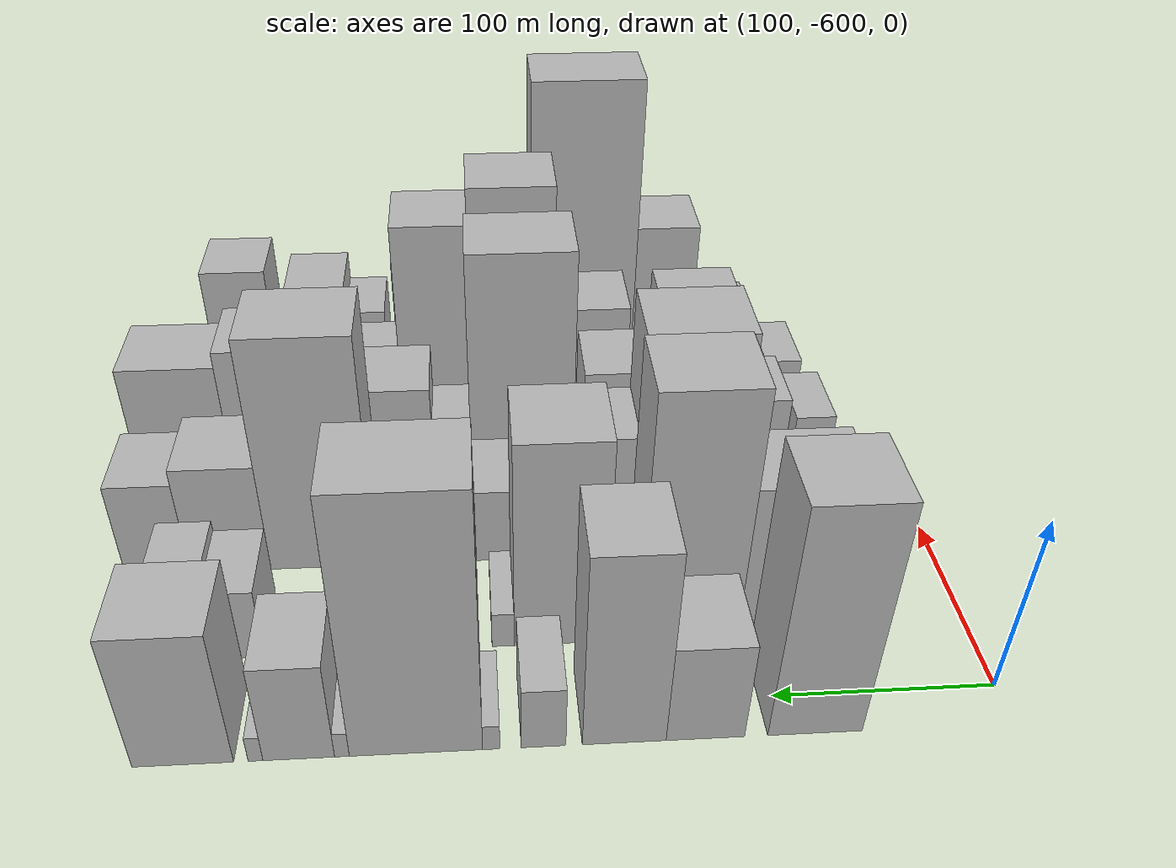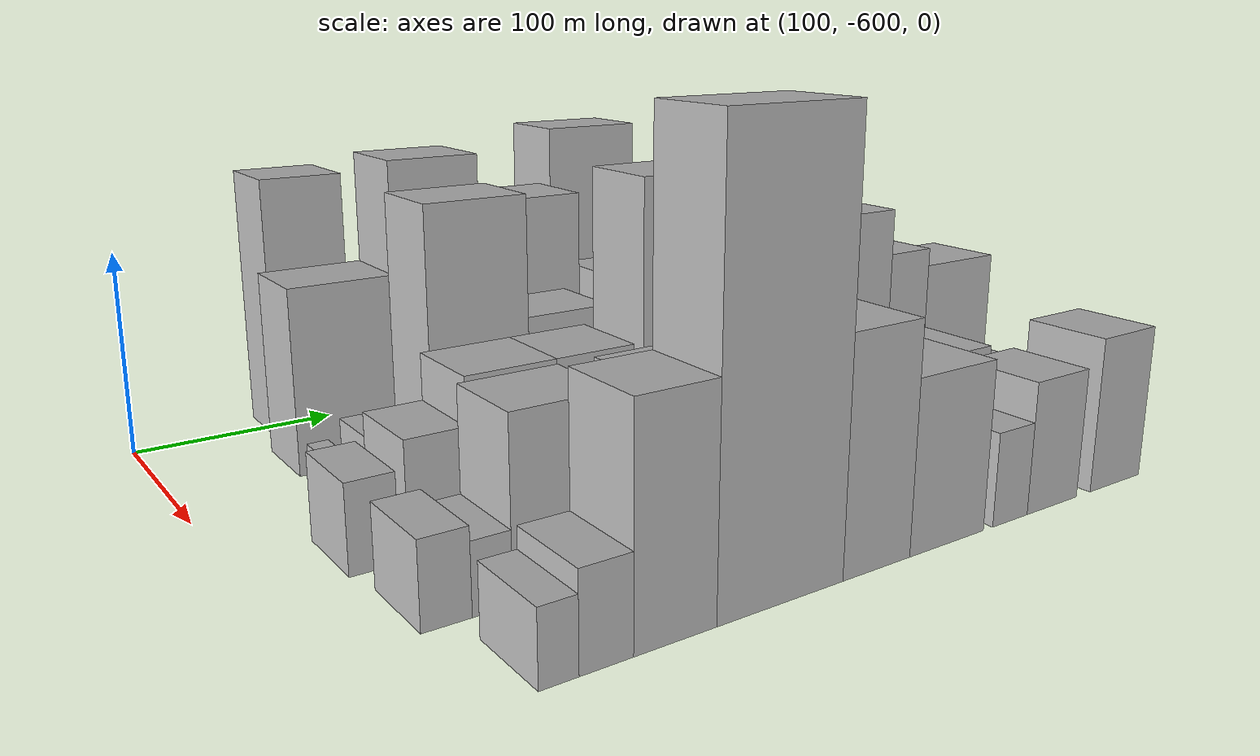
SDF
<sdf version="1.6">
 <world name="default">
  <model name="building_14">
   <static>1</static>
   <pose>100.0000 -514.0677 0 0.000000 0.000000 0.000000</pose>
   <link name="link">
    <pose>0 0 66.00 0 0 0</pose>
    <collision name="collision"><geometry><box><size>40.0000 40.9364 132.0000</size></box></geometry></collision>
    <visual name="visual">
     <cast_shadows>0</cast_shadows>
     <geometry><box><size>40.0000 40.9364 132.0000</size></box></geometry>
     <material>
      <script>
       <uri>model://HANNAS_wall/materials/scripts</uri>
       <uri>model://HANNAS_wall/materials/textures</uri>
       <name>vrc/HANNAS_wall</name>
      </script>
     </material>
    </visual>
   </link>
  </model>
  <model name="building_15">
   <static>1</static>
   <pose>100.0000 -466.7707 0 0.000000 0.000000 0.000000</pose>
   <link name="link">
    <pose>0 0 28.50 0 0 0</pose>
    <collision name="collision"><geometry><box><size>40.0000 33.6576 57.0000</size></box></geometry></collision>
    <visual name="visual">
     <cast_shadows>0</cast_shadows>
     <geometry><box><size>40.0000 33.6576 57.0000</size></box></geometry>
     <material>
      <script>
       <uri>model://HANNAS_wall/materials/scripts</uri>
       <uri>model://HANNAS_wall/materials/textures</uri>
       <name>vrc/HANNAS_wall</name>
      </script>
     </material>
    </visual>
   </link>
  </model>
  <model name="building_16">
   <static>1</static>
   <pose>100.0000 -432.0576 0 0.000000 0.000000 0.000000</pose>
   <link name="link">
    <pose>0 0 55.50 0 0 0</pose>
    <collision name="collision"><geometry><box><size>40.0000 35.7686 111.0000</size></box></geometry></collision>
    <visual name="visual">
     <cast_shadows>0</cast_shadows>
     <geometry><box><size>40.0000 35.7686 111.0000</size></box></geometry>
     <material>
      <script>
       <uri>model://HANNAS_wall/materials/scripts</uri>
       <uri>model://HANNAS_wall/materials/textures</uri>
       <name>vrc/HANNAS_wall</name>
      </script>
     </material>
    </visual>
   </link>
  </model>
  <model name="building_17">
   <static>1</static>
   <pose>100.0000 -397.7357 0 0.000000 0.000000 0.000000</pose>
   <link name="link">
    <pose>0 0 18.00 0 0 0</pose>
    <collision name="collision"><geometry><box><size>40.0000 18.8753 36.0000</size></box></geometry></collision>
    <visual name="visual">
     <cast_shadows>0</cast_shadows>
     <geometry><box><size>40.0000 18.8753 36.0000</size></box></geometry>
     <material>
      <script>
       <uri>model://HANNAS_wall/materials/scripts</uri>
       <uri>model://HANNAS_wall/materials/textures</uri>
       <name>vrc/HANNAS_wall</name>
      </script>
     </material>
    </visual>
   </link>
  </model>
  <model name="building_18">
   <static>1</static>
   <pose>100.0000 -375.6506 0 0.000000 0.000000 0.000000</pose>
   <link name="link">
    <pose>0 0 7.50 0 0 0</pose>
    <collision name="collision"><geometry><box><size>40.0000 7.2949 15.0000</size></box></geometry></collision>
    <visual name="visual">
     <cast_shadows>0</cast_shadows>
     <geometry><box><size>40.0000 7.2949 15.0000</size></box></geometry>
     <material>
      <script>
       <uri>model://HANNAS_wall/materials/scripts</uri>
       <uri>model://HANNAS_wall/materials/textures</uri>
       <name>vrc/HANNAS_wall</name>
      </script>
     </material>
    </visual>
   </link>
  </model>
  <model name="building_19">
   <static>1</static>
   <pose>100.0000 -344.0484 0 0.000000 0.000000 0.000000</pose>
   <link name="link">
    <pose>0 0 73.50 0 0 0</pose>
    <collision name="collision"><geometry><box><size>40.0000 55.9094 147.0000</size></box></geometry></collision>
    <visual name="visual">
     <cast_shadows>0</cast_shadows>
     <geometry><box><size>40.0000 55.9094 147.0000</size></box></geometry>
     <material>
      <script>
       <uri>model://HANNAS_wall/materials/scripts</uri>
       <uri>model://HANNAS_wall/materials/textures</uri>
       <name>vrc/HANNAS_wall</name>
      </script>
     </material>
    </visual>
   </link>
  </model>
  <model name="building_20">
   <static>1</static>
   <pose>100.0000 -313.0314 0 0.000000 0.000000 0.000000</pose>
   <link name="link">
    <pose>0 0 7.50 0 0 0</pose>
    <collision name="collision"><geometry><box><size>40.0000 6.1247 15.0000</size></box></geometry></collision>
    <visual name="visual">
     <cast_shadows>0</cast_shadows>
     <geometry><box><size>40.0000 6.1247 15.0000</size></box></geometry>
     <material>
      <script>
       <uri>model://HANNAS_wall/materials/scripts</uri>
       <uri>model://HANNAS_wall/materials/textures</uri>
       <name>vrc/HANNAS_wall</name>
      </script>
     </material>
    </visual>
   </link>
  </model>
  <model name="building_21">
   <static>1</static>
   <pose>100.0000 -295.0973 0 0.000000 0.000000 0.000000</pose>
   <link name="link">
    <pose>0 0 28.50 0 0 0</pose>
    <collision name="collision"><geometry><box><size>40.0000 29.7436 57.0000</size></box></geometry></collision>
    <visual name="visual">
     <cast_shadows>0</cast_shadows>
     <geometry><box><size>40.0000 29.7436 57.0000</size></box></geometry>
     <material>
      <script>
       <uri>model://HANNAS_wall/materials/scripts</uri>
       <uri>model://HANNAS_wall/materials/textures</uri>
       <name>vrc/HANNAS_wall</name>
      </script>
     </material>
    </visual>
   </link>
  </model>
  <model name="building_22">
   <static>1</static>
   <pose>100.0000 -277.1686 0 0.000000 0.000000 0.000000</pose>
   <link name="link">
    <pose>0 0 7.50 0 0 0</pose>
    <collision name="collision"><geometry><box><size>40.0000 6.1137 15.0000</size></box></geometry></collision>
    <visual name="visual">
     <cast_shadows>0</cast_shadows>
     <geometry><box><size>40.0000 6.1137 15.0000</size></box></geometry>
     <material>
      <script>
       <uri>model://HANNAS_wall/materials/scripts</uri>
       <uri>model://HANNAS_wall/materials/textures</uri>
       <name>vrc/HANNAS_wall</name>
      </script>
     </material>
    </visual>
   </link>
  </model>
  <model name="building_23">
   <static>1</static>
   <pose>100.0000 -247.1722 0 0.000000 0.000000 0.000000</pose>
   <link name="link">
    <pose>0 0 39.00 0 0 0</pose>
    <collision name="collision"><geometry><box><size>40.0000 41.8790 78.0000</size></box></geometry></collision>
    <visual name="visual">
     <cast_shadows>0</cast_shadows>
     <geometry><box><size>40.0000 41.8790 78.0000</size></box></geometry>
     <material>
      <script>
       <uri>model://HANNAS_wall/materials/scripts</uri>
       <uri>model://HANNAS_wall/materials/textures</uri>
       <name>vrc/HANNAS_wall</name>
      </script>
     </material>
    </visual>
   </link>
  </model>
  <model name="building_66">
   <static>1</static>
   <pose>155.0000 -517.5448 0 0.000000 0.000000 0.000000</pose>
   <link name="link">
    <pose>0 0 45.00 0 0 0</pose>
    <collision name="collision"><geometry><box><size>40.0000 51.1776 90.0000</size></box></geometry></collision>
    <visual name="visual">
     <cast_shadows>0</cast_shadows>
     <geometry><box><size>40.0000 51.1776 90.0000</size></box></geometry>
     <material>
      <script>
       <uri>model://HANNAS_wall/materials/scripts</uri>
       <uri>model://HANNAS_wall/materials/textures</uri>
       <name>vrc/HANNAS_wall</name>
      </script>
     </material>
    </visual>
   </link>
  </model>
  <model name="building_67">
   <static>1</static>
   <pose>155.0000 -468.7932 0 0.000000 0.000000 0.000000</pose>
   <link name="link">
    <pose>0 0 72.00 0 0 0</pose>
    <collision name="collision"><geometry><box><size>40.0000 46.3255 144.0000</size></box></geometry></collision>
    <visual name="visual">
     <cast_shadows>0</cast_shadows>
     <geometry><box><size>40.0000 46.3255 144.0000</size></box></geometry>
     <material>
      <script>
       <uri>model://HANNAS_wall/materials/scripts</uri>
       <uri>model://HANNAS_wall/materials/textures</uri>
       <name>vrc/HANNAS_wall</name>
      </script>
     </material>
    </visual>
   </link>
  </model>
  <model name="building_68">
   <static>1</static>
   <pose>155.0000 -441.0066 0 0.000000 0.000000 0.000000</pose>
   <link name="link">
    <pose>0 0 10.50 0 0 0</pose>
    <collision name="collision"><geometry><box><size>40.0000 9.2479 21.0000</size></box></geometry></collision>
    <visual name="visual">
     <cast_shadows>0</cast_shadows>
     <geometry><box><size>40.0000 9.2479 21.0000</size></box></geometry>
     <material>
      <script>
       <uri>model://HANNAS_wall/materials/scripts</uri>
       <uri>model://HANNAS_wall/materials/textures</uri>
       <name>vrc/HANNAS_wall</name>
      </script>
     </material>
    </visual>
   </link>
  </model>
  <model name="building_69">
   <static>1</static>
   <pose>155.0000 -409.1685 0 0.000000 0.000000 0.000000</pose>
   <link name="link">
    <pose>0 0 60.00 0 0 0</pose>
    <collision name="collision"><geometry><box><size>40.0000 42.4283 120.0000</size></box></geometry></collision>
    <visual name="visual">
     <cast_shadows>0</cast_shadows>
     <geometry><box><size>40.0000 42.4283 120.0000</size></box></geometry>
     <material>
      <script>
       <uri>model://HANNAS_wall/materials/scripts</uri>
       <uri>model://HANNAS_wall/materials/textures</uri>
       <name>vrc/HANNAS_wall</name>
      </script>
     </material>
    </visual>
   </link>
  </model>
  <model name="building_70">
   <static>1</static>
   <pose>155.0000 -382.8238 0 0.000000 0.000000 0.000000</pose>
   <link name="link">
    <pose>0 0 10.50 0 0 0</pose>
    <collision name="collision"><geometry><box><size>40.0000 10.2613 21.0000</size></box></geometry></collision>
    <visual name="visual">
     <cast_shadows>0</cast_shadows>
     <geometry><box><size>40.0000 10.2613 21.0000</size></box></geometry>
     <material>
      <script>
       <uri>model://HANNAS_wall/materials/scripts</uri>
       <uri>model://HANNAS_wall/materials/textures</uri>
       <name>vrc/HANNAS_wall</name>
      </script>
     </material>
    </visual>
   </link>
  </model>
  <model name="building_71">
   <static>1</static>
   <pose>155.0000 -350.4230 0 0.000000 0.000000 0.000000</pose>
   <link name="link">
    <pose>0 0 37.50 0 0 0</pose>
    <collision name="collision"><geometry><box><size>40.0000 42.5403 75.0000</size></box></geometry></collision>
    <visual name="visual">
     <cast_shadows>0</cast_shadows>
     <geometry><box><size>40.0000 42.5403 75.0000</size></box></geometry>
     <material>
      <script>
       <uri>model://HANNAS_wall/materials/scripts</uri>
       <uri>model://HANNAS_wall/materials/textures</uri>
       <name>vrc/HANNAS_wall</name>
      </script>
     </material>
    </visual>
   </link>
  </model>
  <model name="building_72">
   <static>1</static>
   <pose>155.0000 -262.2023 0 0.000000 0.000000 0.000000</pose>
   <link name="link">
    <pose>0 0 21.00 0 0 0</pose>
    <collision name="collision"><geometry><box><size>40.0000 23.3004 42.0000</size></box></geometry></collision>
    <visual name="visual">
     <cast_shadows>0</cast_shadows>
     <geometry><box><size>40.0000 23.3004 42.0000</size></box></geometry>
     <material>
      <script>
       <uri>model://HANNAS_wall/materials/scripts</uri>
       <uri>model://HANNAS_wall/materials/textures</uri>
       <name>vrc/HANNAS_wall</name>
      </script>
     </material>
    </visual>
   </link>
  </model>
  <model name="building_73">
   <static>1</static>
   <pose>155.0000 -237.8445 0 0.000000 0.000000 0.000000</pose>
   <link name="link">
    <pose>0 0 24.00 0 0 0</pose>
    <collision name="collision"><geometry><box><size>40.0000 25.4152 48.0000</size></box></geometry></collision>
    <visual name="visual">
     <cast_shadows>0</cast_shadows>
     <geometry><box><size>40.0000 25.4152 48.0000</size></box></geometry>
     <material>
      <script>
       <uri>model://HANNAS_wall/materials/scripts</uri>
       <uri>model://HANNAS_wall/materials/textures</uri>
       <name>vrc/HANNAS_wall</name>
      </script>
     </material>
    </visual>
   </link>
  </model>
  <model name="building_115">
   <static>1</static>
   <pose>210.0000 -538.9738 0 0.000000 0.000000 0.000000</pose>
   <link name="link">
    <pose>0 0 10.50 0 0 0</pose>
    <collision name="collision"><geometry><box><size>40.0000 10.1517 21.0000</size></box></geometry></collision>
    <visual name="visual">
     <cast_shadows>0</cast_shadows>
     <geometry><box><size>40.0000 10.1517 21.0000</size></box></geometry>
     <material>
      <script>
       <uri>model://HANNAS_wall/materials/scripts</uri>
       <uri>model://HANNAS_wall/materials/textures</uri>
       <name>vrc/HANNAS_wall</name>
      </script>
     </material>
    </visual>
   </link>
  </model>
  <model name="building_116">
   <static>1</static>
   <pose>210.0000 -518.9305 0 0.000000 0.000000 0.000000</pose>
   <link name="link">
    <pose>0 0 15.00 0 0 0</pose>
    <collision name="collision"><geometry><box><size>40.0000 17.9350 30.0000</size></box></geometry></collision>
    <visual name="visual">
     <cast_shadows>0</cast_shadows>
     <geometry><box><size>40.0000 17.9350 30.0000</size></box></geometry>
     <material>
      <script>
       <uri>model://HANNAS_wall/materials/scripts</uri>
       <uri>model://HANNAS_wall/materials/textures</uri>
       <name>vrc/HANNAS_wall</name>
      </script>
     </material>
    </visual>
   </link>
  </model>
  <model name="building_117">
   <static>1</static>
   <pose>210.0000 -505.1969 0 0.000000 0.000000 0.000000</pose>
   <link name="link">
    <pose>0 0 10.50 0 0 0</pose>
    <collision name="collision"><geometry><box><size>40.0000 9.5322 21.0000</size></box></geometry></collision>
    <visual name="visual">
     <cast_shadows>0</cast_shadows>
     <geometry><box><size>40.0000 9.5322 21.0000</size></box></geometry>
     <material>
      <script>
       <uri>model://HANNAS_wall/materials/scripts</uri>
       <uri>model://HANNAS_wall/materials/textures</uri>
       <name>vrc/HANNAS_wall</name>
      </script>
     </material>
    </visual>
   </link>
  </model>
  <model name="building_118">
   <static>1</static>
   <pose>210.0000 -475.3468 0 0.000000 0.000000 0.000000</pose>
   <link name="link">
    <pose>0 0 66.00 0 0 0</pose>
    <collision name="collision"><geometry><box><size>40.0000 50.1679 132.0000</size></box></geometry></collision>
    <visual name="visual">
     <cast_shadows>0</cast_shadows>
     <geometry><box><size>40.0000 50.1679 132.0000</size></box></geometry>
     <material>
      <script>
       <uri>model://HANNAS_wall/materials/scripts</uri>
       <uri>model://HANNAS_wall/materials/textures</uri>
       <name>vrc/HANNAS_wall</name>
      </script>
     </material>
    </visual>
   </link>
  </model>
  <model name="building_119">
   <static>1</static>
   <pose>210.0000 -428.3292 0 0.000000 0.000000 0.000000</pose>
   <link name="link">
    <pose>0 0 37.50 0 0 0</pose>
    <collision name="collision"><geometry><box><size>40.0000 43.8673 75.0000</size></box></geometry></collision>
    <visual name="visual">
     <cast_shadows>0</cast_shadows>
     <geometry><box><size>40.0000 43.8673 75.0000</size></box></geometry>
     <material>
      <script>
       <uri>model://HANNAS_wall/materials/scripts</uri>
       <uri>model://HANNAS_wall/materials/textures</uri>
       <name>vrc/HANNAS_wall</name>
      </script>
     </material>
    </visual>
   </link>
  </model>
  <model name="building_120">
   <static>1</static>
   <pose>210.0000 -398.6652 0 0.000000 0.000000 0.000000</pose>
   <link name="link">
    <pose>0 0 15.00 0 0 0</pose>
    <collision name="collision"><geometry><box><size>40.0000 15.4608 30.0000</size></box></geometry></collision>
    <visual name="visual">
     <cast_shadows>0</cast_shadows>
     <geometry><box><size>40.0000 15.4608 30.0000</size></box></geometry>
     <material>
      <script>
       <uri>model://HANNAS_wall/materials/scripts</uri>
       <uri>model://HANNAS_wall/materials/textures</uri>
       <name>vrc/HANNAS_wall</name>
      </script>
     </material>
    </visual>
   </link>
  </model>
  <model name="building_121">
   <static>1</static>
   <pose>210.0000 -379.0205 0 0.000000 0.000000 0.000000</pose>
   <link name="link">
    <pose>0 0 22.50 0 0 0</pose>
    <collision name="collision"><geometry><box><size>40.0000 23.8286 45.0000</size></box></geometry></collision>
    <visual name="visual">
     <cast_shadows>0</cast_shadows>
     <geometry><box><size>40.0000 23.8286 45.0000</size></box></geometry>
     <material>
      <script>
       <uri>model://HANNAS_wall/materials/scripts</uri>
       <uri>model://HANNAS_wall/materials/textures</uri>
       <name>vrc/HANNAS_wall</name>
      </script>
     </material>
    </visual>
   </link>
  </model>
  <model name="building_122">
   <static>1</static>
   <pose>210.0000 -353.2999 0 0.000000 0.000000 0.000000</pose>
   <link name="link">
    <pose>0 0 19.50 0 0 0</pose>
    <collision name="collision"><geometry><box><size>40.0000 19.6126 39.0000</size></box></geometry></collision>
    <visual name="visual">
     <cast_shadows>0</cast_shadows>
     <geometry><box><size>40.0000 19.6126 39.0000</size></box></geometry>
     <material>
      <script>
       <uri>model://HANNAS_wall/materials/scripts</uri>
       <uri>model://HANNAS_wall/materials/textures</uri>
       <name>vrc/HANNAS_wall</name>
      </script>
     </material>
    </visual>
   </link>
  </model>
  <model name="building_123">
   <static>1</static>
   <pose>210.0000 -334.2022 0 0.000000 0.000000 0.000000</pose>
   <link name="link">
    <pose>0 0 18.00 0 0 0</pose>
    <collision name="collision"><geometry><box><size>40.0000 18.5828 36.0000</size></box></geometry></collision>
    <visual name="visual">
     <cast_shadows>0</cast_shadows>
     <geometry><box><size>40.0000 18.5828 36.0000</size></box></geometry>
     <material>
      <script>
       <uri>model://HANNAS_wall/materials/scripts</uri>
       <uri>model://HANNAS_wall/materials/textures</uri>
       <name>vrc/HANNAS_wall</name>
      </script>
     </material>
    </visual>
   </link>
  </model>
  <model name="building_124">
   <static>1</static>
   <pose>210.0000 -295.9468 0 0.000000 0.000000 0.000000</pose>
   <link name="link">
    <pose>0 0 69.00 0 0 0</pose>
    <collision name="collision"><geometry><box><size>40.0000 51.9281 138.0000</size></box></geometry></collision>
    <visual name="visual">
     <cast_shadows>0</cast_shadows>
     <geometry><box><size>40.0000 51.9281 138.0000</size></box></geometry>
     <material>
      <script>
       <uri>model://HANNAS_wall/materials/scripts</uri>
       <uri>model://HANNAS_wall/materials/textures</uri>
       <name>vrc/HANNAS_wall</name>
      </script>
     </material>
    </visual>
   </link>
  </model>
  <model name="building_125">
   <static>1</static>
   <pose>210.0000 -250.2728 0 0.000000 0.000000 0.000000</pose>
   <link name="link">
    <pose>0 0 33.00 0 0 0</pose>
    <collision name="collision"><geometry><box><size>40.0000 39.4199 66.0000</size></box></geometry></collision>
    <visual name="visual">
     <cast_shadows>0</cast_shadows>
     <geometry><box><size>40.0000 39.4199 66.0000</size></box></geometry>
     <material>
      <script>
       <uri>model://HANNAS_wall/materials/scripts</uri>
       <uri>model://HANNAS_wall/materials/textures</uri>
       <name>vrc/HANNAS_wall</name>
      </script>
     </material>
    </visual>
   </link>
  </model>
  <model name="building_126">
   <static>1</static>
   <pose>210.0000 -214.7654 0 0.000000 0.000000 0.000000</pose>
   <link name="link">
    <pose>0 0 28.50 0 0 0</pose>
    <collision name="collision"><geometry><box><size>40.0000 31.5949 57.0000</size></box></geometry></collision>
    <visual name="visual">
     <cast_shadows>0</cast_shadows>
     <geometry><box><size>40.0000 31.5949 57.0000</size></box></geometry>
     <material>
      <script>
       <uri>model://HANNAS_wall/materials/scripts</uri>
       <uri>model://HANNAS_wall/materials/textures</uri>
       <name>vrc/HANNAS_wall</name>
      </script>
     </material>
    </visual>
   </link>
  </model>
  <model name="building_164">
   <static>1</static>
   <pose>265.0000 -552.8743 0 0.000000 0.000000 0.000000</pose>
   <link name="link">
    <pose>0 0 19.50 0 0 0</pose>
    <collision name="collision"><geometry><box><size>40.0000 21.1053 39.0000</size></box></geometry></collision>
    <visual name="visual">
     <cast_shadows>0</cast_shadows>
     <geometry><box><size>40.0000 21.1053 39.0000</size></box></geometry>
     <material>
      <script>
       <uri>model://HANNAS_wall/materials/scripts</uri>
       <uri>model://HANNAS_wall/materials/textures</uri>
       <name>vrc/HANNAS_wall</name>
      </script>
     </material>
    </visual>
   </link>
  </model>
  <model name="building_165">
   <static>1</static>
   <pose>265.0000 -524.8496 0 0.000000 0.000000 0.000000</pose>
   <link name="link">
    <pose>0 0 25.50 0 0 0</pose>
    <collision name="collision"><geometry><box><size>40.0000 26.9441 51.0000</size></box></geometry></collision>
    <visual name="visual">
     <cast_shadows>0</cast_shadows>
     <geometry><box><size>40.0000 26.9441 51.0000</size></box></geometry>
     <material>
      <script>
       <uri>model://HANNAS_wall/materials/scripts</uri>
       <uri>model://HANNAS_wall/materials/textures</uri>
       <name>vrc/HANNAS_wall</name>
      </script>
     </material>
    </visual>
   </link>
  </model>
  <model name="building_166">
   <static>1</static>
   <pose>265.0000 -489.9084 0 0.000000 0.000000 0.000000</pose>
   <link name="link">
    <pose>0 0 36.00 0 0 0</pose>
    <collision name="collision"><geometry><box><size>40.0000 42.9383 72.0000</size></box></geometry></collision>
    <visual name="visual">
     <cast_shadows>0</cast_shadows>
     <geometry><box><size>40.0000 42.9383 72.0000</size></box></geometry>
     <material>
      <script>
       <uri>model://HANNAS_wall/materials/scripts</uri>
       <uri>model://HANNAS_wall/materials/textures</uri>
       <name>vrc/HANNAS_wall</name>
      </script>
     </material>
    </visual>
   </link>
  </model>
  <model name="building_167">
   <static>1</static>
   <pose>265.0000 -448.9937 0 0.000000 0.000000 0.000000</pose>
   <link name="link">
    <pose>0 0 36.00 0 0 0</pose>
    <collision name="collision"><geometry><box><size>40.0000 38.8910 72.0000</size></box></geometry></collision>
    <visual name="visual">
     <cast_shadows>0</cast_shadows>
     <geometry><box><size>40.0000 38.8910 72.0000</size></box></geometry>
     <material>
      <script>
       <uri>model://HANNAS_wall/materials/scripts</uri>
       <uri>model://HANNAS_wall/materials/textures</uri>
       <name>vrc/HANNAS_wall</name>
      </script>
     </material>
    </visual>
   </link>
  </model>
  <model name="building_168">
   <static>1</static>
   <pose>265.0000 -397.5281 0 0.000000 0.000000 0.000000</pose>
   <link name="link">
    <pose>0 0 72.00 0 0 0</pose>
    <collision name="collision"><geometry><box><size>40.0000 54.0403 144.0000</size></box></geometry></collision>
    <visual name="visual">
     <cast_shadows>0</cast_shadows>
     <geometry><box><size>40.0000 54.0403 144.0000</size></box></geometry>
     <material>
      <script>
       <uri>model://HANNAS_wall/materials/scripts</uri>
       <uri>model://HANNAS_wall/materials/textures</uri>
       <name>vrc/HANNAS_wall</name>
      </script>
     </material>
    </visual>
   </link>
  </model>
  <model name="building_169">
   <static>1</static>
   <pose>265.0000 -360.5392 0 0.000000 0.000000 0.000000</pose>
   <link name="link">
    <pose>0 0 19.50 0 0 0</pose>
    <collision name="collision"><geometry><box><size>40.0000 19.9374 39.0000</size></box></geometry></collision>
    <visual name="visual">
     <cast_shadows>0</cast_shadows>
     <geometry><box><size>40.0000 19.9374 39.0000</size></box></geometry>
     <material>
      <script>
       <uri>model://HANNAS_wall/materials/scripts</uri>
       <uri>model://HANNAS_wall/materials/textures</uri>
       <name>vrc/HANNAS_wall</name>
      </script>
     </material>
    </visual>
   </link>
  </model>
  <model name="building_170">
   <static>1</static>
   <pose>265.0000 -332.7064 0 0.000000 0.000000 0.000000</pose>
   <link name="link">
    <pose>0 0 33.00 0 0 0</pose>
    <collision name="collision"><geometry><box><size>40.0000 35.7283 66.0000</size></box></geometry></collision>
    <visual name="visual">
     <cast_shadows>0</cast_shadows>
     <geometry><box><size>40.0000 35.7283 66.0000</size></box></geometry>
     <material>
      <script>
       <uri>model://HANNAS_wall/materials/scripts</uri>
       <uri>model://HANNAS_wall/materials/textures</uri>
       <name>vrc/HANNAS_wall</name>
      </script>
     </material>
    </visual>
   </link>
  </model>
  <model name="building_171">
   <static>1</static>
   <pose>265.0000 -298.8919 0 0.000000 0.000000 0.000000</pose>
   <link name="link">
    <pose>0 0 31.50 0 0 0</pose>
    <collision name="collision"><geometry><box><size>40.0000 31.9007 63.0000</size></box></geometry></collision>
    <visual name="visual">
     <cast_shadows>0</cast_shadows>
     <geometry><box><size>40.0000 31.9007 63.0000</size></box></geometry>
     <material>
      <script>
       <uri>model://HANNAS_wall/materials/scripts</uri>
       <uri>model://HANNAS_wall/materials/textures</uri>
       <name>vrc/HANNAS_wall</name>
      </script>
     </material>
    </visual>
   </link>
  </model>
  <model name="building_172">
   <static>1</static>
   <pose>265.0000 -264.3530 0 0.000000 0.000000 0.000000</pose>
   <link name="link">
    <pose>0 0 46.50 0 0 0</pose>
    <collision name="collision"><geometry><box><size>40.0000 37.1771 93.0000</size></box></geometry></collision>
    <visual name="visual">
     <cast_shadows>0</cast_shadows>
     <geometry><box><size>40.0000 37.1771 93.0000</size></box></geometry>
     <material>
      <script>
       <uri>model://HANNAS_wall/materials/scripts</uri>
       <uri>model://HANNAS_wall/materials/textures</uri>
       <name>vrc/HANNAS_wall</name>
      </script>
     </material>
    </visual>
   </link>
  </model>
  <model name="building_173">
   <static>1</static>
   <pose>265.0000 -221.5194 0 0.000000 0.000000 0.000000</pose>
   <link name="link">
    <pose>0 0 42.00 0 0 0</pose>
    <collision name="collision"><geometry><box><size>40.0000 48.4900 84.0000</size></box></geometry></collision>
    <visual name="visual">
     <cast_shadows>0</cast_shadows>
     <geometry><box><size>40.0000 48.4900 84.0000</size></box></geometry>
     <material>
      <script>
       <uri>model://HANNAS_wall/materials/scripts</uri>
       <uri>model://HANNAS_wall/materials/textures</uri>
       <name>vrc/HANNAS_wall</name>
      </script>
     </material>
    </visual>
   </link>
  </model>
  <model name="building_214">
   <static>1</static>
   <pose>320.0000 -548.9102 0 0.000000 0.000000 0.000000</pose>
   <link name="link">
    <pose>0 0 18.00 0 0 0</pose>
    <collision name="collision"><geometry><box><size>40.0000 20.3565 36.0000</size></box></geometry></collision>
    <visual name="visual">
     <cast_shadows>0</cast_shadows>
     <geometry><box><size>40.0000 20.3565 36.0000</size></box></geometry>
     <material>
      <script>
       <uri>model://HANNAS_wall/materials/scripts</uri>
       <uri>model://HANNAS_wall/materials/textures</uri>
       <name>vrc/HANNAS_wall</name>
      </script>
     </material>
    </visual>
   </link>
  </model>
  <model name="building_215">
   <static>1</static>
   <pose>320.0000 -530.3996 0 0.000000 0.000000 0.000000</pose>
   <link name="link">
    <pose>0 0 15.00 0 0 0</pose>
    <collision name="collision"><geometry><box><size>40.0000 16.6647 30.0000</size></box></geometry></collision>
    <visual name="visual">
     <cast_shadows>0</cast_shadows>
     <geometry><box><size>40.0000 16.6647 30.0000</size></box></geometry>
     <material>
      <script>
       <uri>model://HANNAS_wall/materials/scripts</uri>
       <uri>model://HANNAS_wall/materials/textures</uri>
       <name>vrc/HANNAS_wall</name>
      </script>
     </material>
    </visual>
   </link>
  </model>
  <model name="building_216">
   <static>1</static>
   <pose>320.0000 -499.5988 0 0.000000 0.000000 0.000000</pose>
   <link name="link">
    <pose>0 0 37.50 0 0 0</pose>
    <collision name="collision"><geometry><box><size>40.0000 44.9368 75.0000</size></box></geometry></collision>
    <visual name="visual">
     <cast_shadows>0</cast_shadows>
     <geometry><box><size>40.0000 44.9368 75.0000</size></box></geometry>
     <material>
      <script>
       <uri>model://HANNAS_wall/materials/scripts</uri>
       <uri>model://HANNAS_wall/materials/textures</uri>
       <name>vrc/HANNAS_wall</name>
      </script>
     </material>
    </visual>
   </link>
  </model>
  <model name="building_217">
   <static>1</static>
   <pose>320.0000 -468.4019 0 0.000000 0.000000 0.000000</pose>
   <link name="link">
    <pose>0 0 15.00 0 0 0</pose>
    <collision name="collision"><geometry><box><size>40.0000 17.4571 30.0000</size></box></geometry></collision>
    <visual name="visual">
     <cast_shadows>0</cast_shadows>
     <geometry><box><size>40.0000 17.4571 30.0000</size></box></geometry>
     <material>
      <script>
       <uri>model://HANNAS_wall/materials/scripts</uri>
       <uri>model://HANNAS_wall/materials/textures</uri>
       <name>vrc/HANNAS_wall</name>
      </script>
     </material>
    </visual>
   </link>
  </model>
  <model name="building_218">
   <static>1</static>
   <pose>320.0000 -439.0092 0 0.000000 0.000000 0.000000</pose>
   <link name="link">
    <pose>0 0 37.50 0 0 0</pose>
    <collision name="collision"><geometry><box><size>40.0000 41.3283 75.0000</size></box></geometry></collision>
    <visual name="visual">
     <cast_shadows>0</cast_shadows>
     <geometry><box><size>40.0000 41.3283 75.0000</size></box></geometry>
     <material>
      <script>
       <uri>model://HANNAS_wall/materials/scripts</uri>
       <uri>model://HANNAS_wall/materials/textures</uri>
       <name>vrc/HANNAS_wall</name>
      </script>
     </material>
    </visual>
   </link>
  </model>
  <model name="building_219">
   <static>1</static>
   <pose>320.0000 -395.1659 0 0.000000 0.000000 0.000000</pose>
   <link name="link">
    <pose>0 0 75.00 0 0 0</pose>
    <collision name="collision"><geometry><box><size>40.0000 46.3585 150.0000</size></box></geometry></collision>
    <visual name="visual">
     <cast_shadows>0</cast_shadows>
     <geometry><box><size>40.0000 46.3585 150.0000</size></box></geometry>
     <material>
      <script>
       <uri>model://HANNAS_wall/materials/scripts</uri>
       <uri>model://HANNAS_wall/materials/textures</uri>
       <name>vrc/HANNAS_wall</name>
      </script>
     </material>
    </visual>
   </link>
  </model>
  <model name="building_220">
   <static>1</static>
   <pose>320.0000 -352.0844 0 0.000000 0.000000 0.000000</pose>
   <link name="link">
    <pose>0 0 64.50 0 0 0</pose>
    <collision name="collision"><geometry><box><size>40.0000 39.8044 129.0000</size></box></geometry></collision>
    <visual name="visual">
     <cast_shadows>0</cast_shadows>
     <geometry><box><size>40.0000 39.8044 129.0000</size></box></geometry>
     <material>
      <script>
       <uri>model://HANNAS_wall/materials/scripts</uri>
       <uri>model://HANNAS_wall/materials/textures</uri>
       <name>vrc/HANNAS_wall</name>
      </script>
     </material>
    </visual>
   </link>
  </model>
  <model name="building_221">
   <static>1</static>
   <pose>320.0000 -320.1745 0 0.000000 0.000000 0.000000</pose>
   <link name="link">
    <pose>0 0 22.50 0 0 0</pose>
    <collision name="collision"><geometry><box><size>40.0000 24.0153 45.0000</size></box></geometry></collision>
    <visual name="visual">
     <cast_shadows>0</cast_shadows>
     <geometry><box><size>40.0000 24.0153 45.0000</size></box></geometry>
     <material>
      <script>
       <uri>model://HANNAS_wall/materials/scripts</uri>
       <uri>model://HANNAS_wall/materials/textures</uri>
       <name>vrc/HANNAS_wall</name>
      </script>
     </material>
    </visual>
   </link>
  </model>
  <model name="building_222">
   <static>1</static>
   <pose>320.0000 -299.0993 0 0.000000 0.000000 0.000000</pose>
   <link name="link">
    <pose>0 0 18.00 0 0 0</pose>
    <collision name="collision"><geometry><box><size>40.0000 18.1351 36.0000</size></box></geometry></collision>
    <visual name="visual">
     <cast_shadows>0</cast_shadows>
     <geometry><box><size>40.0000 18.1351 36.0000</size></box></geometry>
     <material>
      <script>
       <uri>model://HANNAS_wall/materials/scripts</uri>
       <uri>model://HANNAS_wall/materials/textures</uri>
       <name>vrc/HANNAS_wall</name>
      </script>
     </material>
    </visual>
   </link>
  </model>
  <model name="building_223">
   <static>1</static>
   <pose>320.0000 -275.7302 0 0.000000 0.000000 0.000000</pose>
   <link name="link">
    <pose>0 0 28.50 0 0 0</pose>
    <collision name="collision"><geometry><box><size>40.0000 28.6032 57.0000</size></box></geometry></collision>
    <visual name="visual">
     <cast_shadows>0</cast_shadows>
     <geometry><box><size>40.0000 28.6032 57.0000</size></box></geometry>
     <material>
      <script>
       <uri>model://HANNAS_wall/materials/scripts</uri>
       <uri>model://HANNAS_wall/materials/textures</uri>
       <name>vrc/HANNAS_wall</name>
      </script>
     </material>
    </visual>
   </link>
  </model>
  <model name="building_224">
   <static>1</static>
   <pose>320.0000 -249.8744 0 0.000000 0.000000 0.000000</pose>
   <link name="link">
    <pose>0 0 19.50 0 0 0</pose>
    <collision name="collision"><geometry><box><size>40.0000 23.1083 39.0000</size></box></geometry></collision>
    <visual name="visual">
     <cast_shadows>0</cast_shadows>
     <geometry><box><size>40.0000 23.1083 39.0000</size></box></geometry>
     <material>
      <script>
       <uri>model://HANNAS_wall/materials/scripts</uri>
       <uri>model://HANNAS_wall/materials/textures</uri>
       <name>vrc/HANNAS_wall</name>
      </script>
     </material>
    </visual>
   </link>
  </model>
  <model name="building_225">
   <static>1</static>
   <pose>320.0000 -226.9347 0 0.000000 0.000000 0.000000</pose>
   <link name="link">
    <pose>0 0 19.50 0 0 0</pose>
    <collision name="collision"><geometry><box><size>40.0000 22.7710 39.0000</size></box></geometry></collision>
    <visual name="visual">
     <cast_shadows>0</cast_shadows>
     <geometry><box><size>40.0000 22.7710 39.0000</size></box></geometry>
     <material>
      <script>
       <uri>model://HANNAS_wall/materials/scripts</uri>
       <uri>model://HANNAS_wall/materials/textures</uri>
       <name>vrc/HANNAS_wall</name>
      </script>
     </material>
    </visual>
   </link>
  </model>
  <model name="building_269">
   <static>1</static>
   <pose>375.0000 -535.7660 0 0.000000 0.000000 0.000000</pose>
   <link name="link">
    <pose>0 0 15.00 0 0 0</pose>
    <collision name="collision"><geometry><box><size>40.0000 15.5698 30.0000</size></box></geometry></collision>
    <visual name="visual">
     <cast_shadows>0</cast_shadows>
     <geometry><box><size>40.0000 15.5698 30.0000</size></box></geometry>
     <material>
      <script>
       <uri>model://HANNAS_wall/materials/scripts</uri>
       <uri>model://HANNAS_wall/materials/textures</uri>
       <name>vrc/HANNAS_wall</name>
      </script>
     </material>
    </visual>
   </link>
  </model>
  <model name="building_270">
   <static>1</static>
   <pose>375.0000 -517.0660 0 0.000000 0.000000 0.000000</pose>
   <link name="link">
    <pose>0 0 19.50 0 0 0</pose>
    <collision name="collision"><geometry><box><size>40.0000 21.8302 39.0000</size></box></geometry></collision>
    <visual name="visual">
     <cast_shadows>0</cast_shadows>
     <geometry><box><size>40.0000 21.8302 39.0000</size></box></geometry>
     <material>
      <script>
       <uri>model://HANNAS_wall/materials/scripts</uri>
       <uri>model://HANNAS_wall/materials/textures</uri>
       <name>vrc/HANNAS_wall</name>
      </script>
     </material>
    </visual>
   </link>
  </model>
  <model name="building_271">
   <static>1</static>
   <pose>375.0000 -488.1709 0 0.000000 0.000000 0.000000</pose>
   <link name="link">
    <pose>0 0 46.50 0 0 0</pose>
    <collision name="collision"><geometry><box><size>40.0000 35.9600 93.0000</size></box></geometry></collision>
    <visual name="visual">
     <cast_shadows>0</cast_shadows>
     <geometry><box><size>40.0000 35.9600 93.0000</size></box></geometry>
     <material>
      <script>
       <uri>model://HANNAS_wall/materials/scripts</uri>
       <uri>model://HANNAS_wall/materials/textures</uri>
       <name>vrc/HANNAS_wall</name>
      </script>
     </material>
    </visual>
   </link>
  </model>
  <model name="building_272">
   <static>1</static>
   <pose>375.0000 -439.3464 0 0.000000 0.000000 0.000000</pose>
   <link name="link">
    <pose>0 0 91.50 0 0 0</pose>
    <collision name="collision"><geometry><box><size>40.0000 61.6889 183.0000</size></box></geometry></collision>
    <visual name="visual">
     <cast_shadows>0</cast_shadows>
     <geometry><box><size>40.0000 61.6889 183.0000</size></box></geometry>
     <material>
      <script>
       <uri>model://HANNAS_wall/materials/scripts</uri>
       <uri>model://HANNAS_wall/materials/textures</uri>
       <name>vrc/HANNAS_wall</name>
      </script>
     </material>
    </visual>
   </link>
  </model>
  <model name="building_273">
   <static>1</static>
   <pose>375.0000 -390.1215 0 0.000000 0.000000 0.000000</pose>
   <link name="link">
    <pose>0 0 49.50 0 0 0</pose>
    <collision name="collision"><geometry><box><size>40.0000 36.7610 99.0000</size></box></geometry></collision>
    <visual name="visual">
     <cast_shadows>0</cast_shadows>
     <geometry><box><size>40.0000 36.7610 99.0000</size></box></geometry>
     <material>
      <script>
       <uri>model://HANNAS_wall/materials/scripts</uri>
       <uri>model://HANNAS_wall/materials/textures</uri>
       <name>vrc/HANNAS_wall</name>
      </script>
     </material>
    </visual>
   </link>
  </model>
  <model name="building_274">
   <static>1</static>
   <pose>375.0000 -349.5268 0 0.000000 0.000000 0.000000</pose>
   <link name="link">
    <pose>0 0 37.50 0 0 0</pose>
    <collision name="collision"><geometry><box><size>40.0000 44.4284 75.0000</size></box></geometry></collision>
    <visual name="visual">
     <cast_shadows>0</cast_shadows>
     <geometry><box><size>40.0000 44.4284 75.0000</size></box></geometry>
     <material>
      <script>
       <uri>model://HANNAS_wall/materials/scripts</uri>
       <uri>model://HANNAS_wall/materials/textures</uri>
       <name>vrc/HANNAS_wall</name>
      </script>
     </material>
    </visual>
   </link>
  </model>
  <model name="building_275">
   <static>1</static>
   <pose>375.0000 -310.0340 0 0.000000 0.000000 0.000000</pose>
   <link name="link">
    <pose>0 0 21.00 0 0 0</pose>
    <collision name="collision"><geometry><box><size>40.0000 22.5571 42.0000</size></box></geometry></collision>
    <visual name="visual">
     <cast_shadows>0</cast_shadows>
     <geometry><box><size>40.0000 22.5571 42.0000</size></box></geometry>
     <material>
      <script>
       <uri>model://HANNAS_wall/materials/scripts</uri>
       <uri>model://HANNAS_wall/materials/textures</uri>
       <name>vrc/HANNAS_wall</name>
      </script>
     </material>
    </visual>
   </link>
  </model>
  <model name="building_276">
   <static>1</static>
   <pose>375.0000 -281.5622 0 0.000000 0.000000 0.000000</pose>
   <link name="link">
    <pose>0 0 30.00 0 0 0</pose>
    <collision name="collision"><geometry><box><size>40.0000 34.3865 60.0000</size></box></geometry></collision>
    <visual name="visual">
     <cast_shadows>0</cast_shadows>
     <geometry><box><size>40.0000 34.3865 60.0000</size></box></geometry>
     <material>
      <script>
       <uri>model://HANNAS_wall/materials/scripts</uri>
       <uri>model://HANNAS_wall/materials/textures</uri>
       <name>vrc/HANNAS_wall</name>
      </script>
     </material>
    </visual>
   </link>
  </model>
  <model name="building_277">
   <static>1</static>
   <pose>375.0000 -235.9167 0 0.000000 0.000000 0.000000</pose>
   <link name="link">
    <pose>0 0 36.00 0 0 0</pose>
    <collision name="collision"><geometry><box><size>40.0000 36.9044 72.0000</size></box></geometry></collision>
    <visual name="visual">
     <cast_shadows>0</cast_shadows>
     <geometry><box><size>40.0000 36.9044 72.0000</size></box></geometry>
     <material>
      <script>
       <uri>model://HANNAS_wall/materials/scripts</uri>
       <uri>model://HANNAS_wall/materials/textures</uri>
       <name>vrc/HANNAS_wall</name>
      </script>
     </material>
    </visual>
   </link>
  </model>
 </world>
</sdf>
